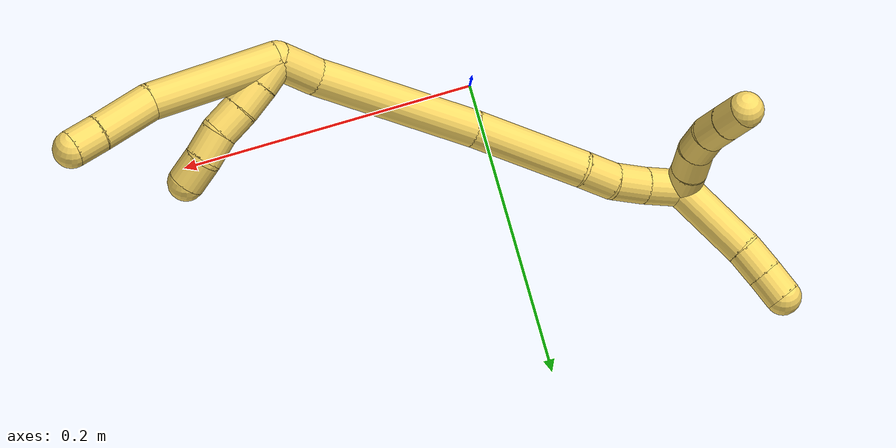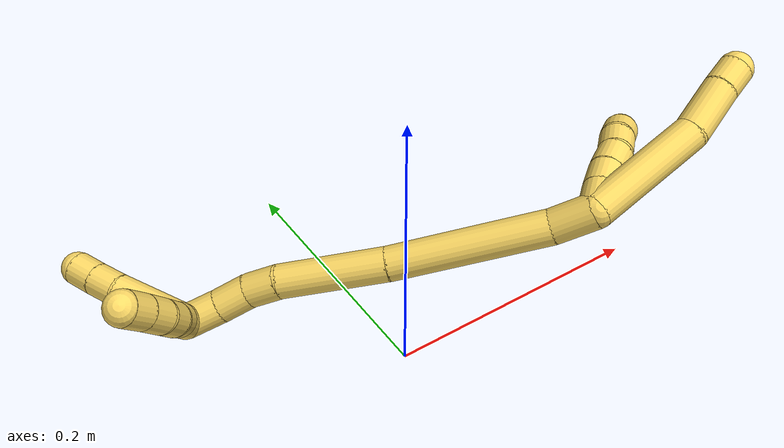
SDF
<sdf version="1.7">
 <world name="default">
  <model name="5">
   <static>0</static>
   <link name="5">
    <collision name="collision-cylinder-e_1_2_8">
     <pose>0.0444 0.002578 -0.001275 -2.03013 1.5061 -1.9713</pose>
     <geometry><cylinder><radius>0.0125</radius><length>0.088986</length></cylinder></geometry>
     <surface>
      <friction><ode><mu>1.16</mu><mu2>1.16</mu2><slip1>0</slip1><slip2>0</slip2></ode></friction>
      <contact><ode><kp>1e+06</kp><kd>1</kd><max_vel>0</max_vel><min_depth>0.001</min_depth></ode></contact>
     </surface>
    </collision>
    <visual name="visual-cylinder-e_1_2_8">
     <pose>0.0444 0.002578 -0.001275 -2.03013 1.5061 -1.9713</pose>
     <geometry><cylinder><radius>0.0125</radius><length>0.088986</length></cylinder></geometry>
     <material><ambient>1 0.858824 0.4 1</ambient></material>
    </visual>
    <collision name="collision-cylinder-e_2_8_9">
     <pose>0.108046 0.011362 -0.003516 -1.72514 1.2554 -1.40575</pose>
     <geometry><cylinder><radius>0.0125</radius><length>0.040489</length></cylinder></geometry>
     <surface>
      <friction><ode><mu>1.16</mu><mu2>1.16</mu2><slip1>0</slip1><slip2>0</slip2></ode></friction>
      <contact><ode><kp>1e+06</kp><kd>1</kd><max_vel>0</max_vel><min_depth>0.001</min_depth></ode></contact>
     </surface>
    </collision>
    <visual name="visual-cylinder-e_2_8_9">
     <pose>0.108046 0.011362 -0.003516 -1.72514 1.2554 -1.40575</pose>
     <geometry><cylinder><radius>0.0125</radius><length>0.040489</length></cylinder></geometry>
     <material><ambient>1 0.858824 0.4 1</ambient></material>
    </visual>
    <collision name="collision-cylinder-e_3_9_6">
     <pose>0.13717 0.020217 -0.005323 -1.87816 1.2964 -1.6052</pose>
     <geometry><cylinder><radius>0.0125</radius><length>0.020525</length></cylinder></geometry>
     <surface>
      <friction><ode><mu>1.16</mu><mu2>1.16</mu2><slip1>0</slip1><slip2>0</slip2></ode></friction>
      <contact><ode><kp>1e+06</kp><kd>1</kd><max_vel>0</max_vel><min_depth>0.001</min_depth></ode></contact>
     </surface>
    </collision>
    <visual name="visual-cylinder-e_3_9_6">
     <pose>0.13717 0.020217 -0.005323 -1.87816 1.2964 -1.6052</pose>
     <geometry><cylinder><radius>0.0125</radius><length>0.020525</length></cylinder></geometry>
     <material><ambient>1 0.858824 0.4 1</ambient></material>
    </visual>
    <collision name="collision-cylinder-e_1_2_10">
     <pose>0.007508 0.004605 -0.004736 -2.37012 0.84921 -1.67796</pose>
     <geometry><cylinder><radius>0.0125</radius><length>0.02</length></cylinder></geometry>
     <surface>
      <friction><ode><mu>1.16</mu><mu2>1.16</mu2><slip1>0</slip1><slip2>0</slip2></ode></friction>
      <contact><ode><kp>1e+06</kp><kd>1</kd><max_vel>0</max_vel><min_depth>0.001</min_depth></ode></contact>
     </surface>
    </collision>
    <visual name="visual-cylinder-e_1_2_10">
     <pose>0.007508 0.004605 -0.004736 -2.37012 0.84921 -1.67796</pose>
     <geometry><cylinder><radius>0.0125</radius><length>0.02</length></cylinder></geometry>
     <material><ambient>1 0.858824 0.4 1</ambient></material>
    </visual>
    <collision name="collision-cylinder-e_2_10_11">
     <pose>0.022915 0.013438 -0.013912 -2.38084 0.910806 -1.77219</pose>
     <geometry><cylinder><radius>0.0125</radius><length>0.02</length></cylinder></geometry>
     <surface>
      <friction><ode><mu>1.16</mu><mu2>1.16</mu2><slip1>0</slip1><slip2>0</slip2></ode></friction>
      <contact><ode><kp>1e+06</kp><kd>1</kd><max_vel>0</max_vel><min_depth>0.001</min_depth></ode></contact>
     </surface>
    </collision>
    <visual name="visual-cylinder-e_2_10_11">
     <pose>0.022915 0.013438 -0.013912 -2.38084 0.910806 -1.77219</pose>
     <geometry><cylinder><radius>0.0125</radius><length>0.02</length></cylinder></geometry>
     <material><ambient>1 0.858824 0.4 1</ambient></material>
    </visual>
    <collision name="collision-cylinder-e_3_11_12">
     <pose>0.03911 0.020979 -0.022849 -2.50644 0.978201 -2.03508</pose>
     <geometry><cylinder><radius>0.0125</radius><length>0.02</length></cylinder></geometry>
     <surface>
      <friction><ode><mu>1.16</mu><mu2>1.16</mu2><slip1>0</slip1><slip2>0</slip2></ode></friction>
      <contact><ode><kp>1e+06</kp><kd>1</kd><max_vel>0</max_vel><min_depth>0.001</min_depth></ode></contact>
     </surface>
    </collision>
    <visual name="visual-cylinder-e_3_11_12">
     <pose>0.03911 0.020979 -0.022849 -2.50644 0.978201 -2.03508</pose>
     <geometry><cylinder><radius>0.0125</radius><length>0.02</length></cylinder></geometry>
     <material><ambient>1 0.858824 0.4 1</ambient></material>
    </visual>
    <collision name="collision-cylinder-e_4_12_13">
     <pose>0.054167 0.028402 -0.033459 -2.54987 0.742573 -1.81317</pose>
     <geometry><cylinder><radius>0.0125</radius><length>0.02</length></cylinder></geometry>
     <surface>
      <friction><ode><mu>1.16</mu><mu2>1.16</mu2><slip1>0</slip1><slip2>0</slip2></ode></friction>
      <contact><ode><kp>1e+06</kp><kd>1</kd><max_vel>0</max_vel><min_depth>0.001</min_depth></ode></contact>
     </surface>
    </collision>
    <visual name="visual-cylinder-e_4_12_13">
     <pose>0.054167 0.028402 -0.033459 -2.54987 0.742573 -1.81317</pose>
     <geometry><cylinder><radius>0.0125</radius><length>0.02</length></cylinder></geometry>
     <material><ambient>1 0.858824 0.4 1</ambient></material>
    </visual>
    <collision name="collision-cylinder-e_5_13_5">
     <pose>0.067187 0.034525 -0.047109 -2.88052 0.676233 -2.42691</pose>
     <geometry><cylinder><radius>0.0125</radius><length>0.02</length></cylinder></geometry>
     <surface>
      <friction><ode><mu>1.16</mu><mu2>1.16</mu2><slip1>0</slip1><slip2>0</slip2></ode></friction>
      <contact><ode><kp>1e+06</kp><kd>1</kd><max_vel>0</max_vel><min_depth>0.001</min_depth></ode></contact>
     </surface>
    </collision>
    <visual name="visual-cylinder-e_5_13_5">
     <pose>0.067187 0.034525 -0.047109 -2.88052 0.676233 -2.42691</pose>
     <geometry><cylinder><radius>0.0125</radius><length>0.02</length></cylinder></geometry>
     <material><ambient>1 0.858824 0.4 1</ambient></material>
    </visual>
    <collision name="collision-cylinder-e_1_2_14">
     <pose>-0.012236 0.004116 -0.008571 -2.69385 -0.910205 2.27063</pose>
     <geometry><cylinder><radius>0.0125</radius><length>0.030991</length></cylinder></geometry>
     <surface>
      <friction><ode><mu>1.16</mu><mu2>1.16</mu2><slip1>0</slip1><slip2>0</slip2></ode></friction>
      <contact><ode><kp>1e+06</kp><kd>1</kd><max_vel>0</max_vel><min_depth>0.001</min_depth></ode></contact>
     </surface>
    </collision>
    <visual name="visual-cylinder-e_1_2_14">
     <pose>-0.012236 0.004116 -0.008571 -2.69385 -0.910205 2.27063</pose>
     <geometry><cylinder><radius>0.0125</radius><length>0.030991</length></cylinder></geometry>
     <material><ambient>1 0.858824 0.4 1</ambient></material>
    </visual>
    <collision name="collision-cylinder-e_2_14_15">
     <pose>-0.073006 0.030778 -0.036993 -2.29274 -1.01658 1.77861</pose>
     <geometry><cylinder><radius>0.0125</radius><length>0.114157</length></cylinder></geometry>
     <surface>
      <friction><ode><mu>1.16</mu><mu2>1.16</mu2><slip1>0</slip1><slip2>0</slip2></ode></friction>
      <contact><ode><kp>1e+06</kp><kd>1</kd><max_vel>0</max_vel><min_depth>0.001</min_depth></ode></contact>
     </surface>
    </collision>
    <visual name="visual-cylinder-e_2_14_15">
     <pose>-0.073006 0.030778 -0.036993 -2.29274 -1.01658 1.77861</pose>
     <geometry><cylinder><radius>0.0125</radius><length>0.114157</length></cylinder></geometry>
     <material><ambient>1 0.858824 0.4 1</ambient></material>
    </visual>
    <collision name="collision-cylinder-e_3_15_16">
     <pose>-0.154165 0.071114 -0.07016 -2.21331 -0.972828 1.62552</pose>
     <geometry><cylinder><radius>0.0125</radius><length>0.078948</length></cylinder></geometry>
     <surface>
      <friction><ode><mu>1.16</mu><mu2>1.16</mu2><slip1>0</slip1><slip2>0</slip2></ode></friction>
      <contact><ode><kp>1e+06</kp><kd>1</kd><max_vel>0</max_vel><min_depth>0.001</min_depth></ode></contact>
     </surface>
    </collision>
    <visual name="visual-cylinder-e_3_15_16">
     <pose>-0.154165 0.071114 -0.07016 -2.21331 -0.972828 1.62552</pose>
     <geometry><cylinder><radius>0.0125</radius><length>0.078948</length></cylinder></geometry>
     <material><ambient>1 0.858824 0.4 1</ambient></material>
    </visual>
    <collision name="collision-cylinder-e_4_16_17">
     <pose>-0.196634 0.092929 -0.089109 -2.52137 -0.957918 2.0358</pose>
     <geometry><cylinder><radius>0.0125</radius><length>0.024069</length></cylinder></geometry>
     <surface>
      <friction><ode><mu>1.16</mu><mu2>1.16</mu2><slip1>0</slip1><slip2>0</slip2></ode></friction>
      <contact><ode><kp>1e+06</kp><kd>1</kd><max_vel>0</max_vel><min_depth>0.001</min_depth></ode></contact>
     </surface>
    </collision>
    <visual name="visual-cylinder-e_4_16_17">
     <pose>-0.196634 0.092929 -0.089109 -2.52137 -0.957918 2.0358</pose>
     <geometry><cylinder><radius>0.0125</radius><length>0.024069</length></cylinder></geometry>
     <material><ambient>1 0.858824 0.4 1</ambient></material>
    </visual>
    <collision name="collision-cylinder-e_5_17_18">
     <pose>-0.217639 0.098895 -0.099414 -2.74744 -1.14519 2.54086</pose>
     <geometry><cylinder><radius>0.0125</radius><length>0.024507</length></cylinder></geometry>
     <surface>
      <friction><ode><mu>1.16</mu><mu2>1.16</mu2><slip1>0</slip1><slip2>0</slip2></ode></friction>
      <contact><ode><kp>1e+06</kp><kd>1</kd><max_vel>0</max_vel><min_depth>0.001</min_depth></ode></contact>
     </surface>
    </collision>
    <visual name="visual-cylinder-e_5_17_18">
     <pose>-0.217639 0.098895 -0.099414 -2.74744 -1.14519 2.54086</pose>
     <geometry><cylinder><radius>0.0125</radius><length>0.024507</length></cylinder></geometry>
     <material><ambient>1 0.858824 0.4 1</ambient></material>
    </visual>
    <collision name="collision-cylinder-e_6_18_1">
     <pose>-0.241729 0.10341 -0.107677 -2.52016 -1.24151 2.29741</pose>
     <geometry><cylinder><radius>0.0125</radius><length>0.027327</length></cylinder></geometry>
     <surface>
      <friction><ode><mu>1.16</mu><mu2>1.16</mu2><slip1>0</slip1><slip2>0</slip2></ode></friction>
      <contact><ode><kp>1e+06</kp><kd>1</kd><max_vel>0</max_vel><min_depth>0.001</min_depth></ode></contact>
     </surface>
    </collision>
    <visual name="visual-cylinder-e_6_18_1">
     <pose>-0.241729 0.10341 -0.107677 -2.52016 -1.24151 2.29741</pose>
     <geometry><cylinder><radius>0.0125</radius><length>0.027327</length></cylinder></geometry>
     <material><ambient>1 0.858824 0.4 1</ambient></material>
    </visual>
    <collision name="collision-cylinder-e_1_1_19">
     <pose>-0.256252 0.106552 -0.101414 -0.057731 -0.160113 0.004633</pose>
     <geometry><cylinder><radius>0.0125</radius><length>0.02</length></cylinder></geometry>
     <surface>
      <friction><ode><mu>1.16</mu><mu2>1.16</mu2><slip1>0</slip1><slip2>0</slip2></ode></friction>
      <contact><ode><kp>1e+06</kp><kd>1</kd><max_vel>0</max_vel><min_depth>0.001</min_depth></ode></contact>
     </surface>
    </collision>
    <visual name="visual-cylinder-e_1_1_19">
     <pose>-0.256252 0.106552 -0.101414 -0.057731 -0.160113 0.004633</pose>
     <geometry><cylinder><radius>0.0125</radius><length>0.02</length></cylinder></geometry>
     <material><ambient>1 0.858824 0.4 1</ambient></material>
    </visual>
    <collision name="collision-cylinder-e_2_19_20">
     <pose>-0.259153 0.106741 -0.081651 0.038394 -0.130989 -0.002519</pose>
     <geometry><cylinder><radius>0.0125</radius><length>0.02</length></cylinder></geometry>
     <surface>
      <friction><ode><mu>1.16</mu><mu2>1.16</mu2><slip1>0</slip1><slip2>0</slip2></ode></friction>
      <contact><ode><kp>1e+06</kp><kd>1</kd><max_vel>0</max_vel><min_depth>0.001</min_depth></ode></contact>
     </surface>
    </collision>
    <visual name="visual-cylinder-e_2_19_20">
     <pose>-0.259153 0.106741 -0.081651 0.038394 -0.130989 -0.002519</pose>
     <geometry><cylinder><radius>0.0125</radius><length>0.02</length></cylinder></geometry>
     <material><ambient>1 0.858824 0.4 1</ambient></material>
    </visual>
    <collision name="collision-cylinder-e_3_20_21">
     <pose>-0.26305 0.10796 -0.062219 -0.166363 -0.262086 0.021976</pose>
     <geometry><cylinder><radius>0.0125</radius><length>0.02</length></cylinder></geometry>
     <surface>
      <friction><ode><mu>1.16</mu><mu2>1.16</mu2><slip1>0</slip1><slip2>0</slip2></ode></friction>
      <contact><ode><kp>1e+06</kp><kd>1</kd><max_vel>0</max_vel><min_depth>0.001</min_depth></ode></contact>
     </surface>
    </collision>
    <visual name="visual-cylinder-e_3_20_21">
     <pose>-0.26305 0.10796 -0.062219 -0.166363 -0.262086 0.021976</pose>
     <geometry><cylinder><radius>0.0125</radius><length>0.02</length></cylinder></geometry>
     <material><ambient>1 0.858824 0.4 1</ambient></material>
    </visual>
    <collision name="collision-cylinder-e_4_21_22">
     <pose>-0.26959 0.112701 -0.044061 -0.349014 -0.405985 0.072543</pose>
     <geometry><cylinder><radius>0.0125</radius><length>0.02</length></cylinder></geometry>
     <surface>
      <friction><ode><mu>1.16</mu><mu2>1.16</mu2><slip1>0</slip1><slip2>0</slip2></ode></friction>
      <contact><ode><kp>1e+06</kp><kd>1</kd><max_vel>0</max_vel><min_depth>0.001</min_depth></ode></contact>
     </surface>
    </collision>
    <visual name="visual-cylinder-e_4_21_22">
     <pose>-0.26959 0.112701 -0.044061 -0.349014 -0.405985 0.072543</pose>
     <geometry><cylinder><radius>0.0125</radius><length>0.02</length></cylinder></geometry>
     <material><ambient>1 0.858824 0.4 1</ambient></material>
    </visual>
    <collision name="collision-cylinder-e_5_22_4">
     <pose>-0.2778 0.118928 -0.026923 -0.34803 -0.440122 0.078604</pose>
     <geometry><cylinder><radius>0.0125</radius><length>0.02</length></cylinder></geometry>
     <surface>
      <friction><ode><mu>1.16</mu><mu2>1.16</mu2><slip1>0</slip1><slip2>0</slip2></ode></friction>
      <contact><ode><kp>1e+06</kp><kd>1</kd><max_vel>0</max_vel><min_depth>0.001</min_depth></ode></contact>
     </surface>
    </collision>
    <visual name="visual-cylinder-e_5_22_4">
     <pose>-0.2778 0.118928 -0.026923 -0.34803 -0.440122 0.078604</pose>
     <geometry><cylinder><radius>0.0125</radius><length>0.02</length></cylinder></geometry>
     <material><ambient>1 0.858824 0.4 1</ambient></material>
    </visual>
    <collision name="collision-cylinder-e_1_1_23">
     <pose>-0.268071 0.130483 -0.1196 -1.89854 -0.478178 0.656075</pose>
     <geometry><cylinder><radius>0.0125</radius><length>0.058295</length></cylinder></geometry>
     <surface>
      <friction><ode><mu>1.16</mu><mu2>1.16</mu2><slip1>0</slip1><slip2>0</slip2></ode></friction>
      <contact><ode><kp>1e+06</kp><kd>1</kd><max_vel>0</max_vel><min_depth>0.001</min_depth></ode></contact>
     </surface>
    </collision>
    <visual name="visual-cylinder-e_1_1_23">
     <pose>-0.268071 0.130483 -0.1196 -1.89854 -0.478178 0.656075</pose>
     <geometry><cylinder><radius>0.0125</radius><length>0.058295</length></cylinder></geometry>
     <material><ambient>1 0.858824 0.4 1</ambient></material>
    </visual>
    <collision name="collision-cylinder-e_2_23_24">
     <pose>-0.285786 0.163834 -0.13232 -2.03122 -0.410805 0.648102</pose>
     <geometry><cylinder><radius>0.0125</radius><length>0.02155</length></cylinder></geometry>
     <surface>
      <friction><ode><mu>1.16</mu><mu2>1.16</mu2><slip1>0</slip1><slip2>0</slip2></ode></friction>
      <contact><ode><kp>1e+06</kp><kd>1</kd><max_vel>0</max_vel><min_depth>0.001</min_depth></ode></contact>
     </surface>
    </collision>
    <visual name="visual-cylinder-e_2_23_24">
     <pose>-0.285786 0.163834 -0.13232 -2.03122 -0.410805 0.648102</pose>
     <geometry><cylinder><radius>0.0125</radius><length>0.02155</length></cylinder></geometry>
     <material><ambient>1 0.858824 0.4 1</ambient></material>
    </visual>
    <collision name="collision-cylinder-e_3_24_3">
     <pose>-0.293819 0.181123 -0.140762 -2.01851 -0.379113 0.592029</pose>
     <geometry><cylinder><radius>0.0125</radius><length>0.020155</length></cylinder></geometry>
     <surface>
      <friction><ode><mu>1.16</mu><mu2>1.16</mu2><slip1>0</slip1><slip2>0</slip2></ode></friction>
      <contact><ode><kp>1e+06</kp><kd>1</kd><max_vel>0</max_vel><min_depth>0.001</min_depth></ode></contact>
     </surface>
    </collision>
    <visual name="visual-cylinder-e_3_24_3">
     <pose>-0.293819 0.181123 -0.140762 -2.01851 -0.379113 0.592029</pose>
     <geometry><cylinder><radius>0.0125</radius><length>0.020155</length></cylinder></geometry>
     <material><ambient>1 0.858824 0.4 1</ambient></material>
    </visual>
    <collision name="collision-sphere-3">
     <pose>-0.297548 0.189562 -0.144815 0 -0 0</pose>
     <geometry><sphere><radius>0.0125</radius></sphere></geometry>
     <surface>
      <friction><ode><mu>1.16</mu><mu2>1.16</mu2><slip1>0</slip1><slip2>0</slip2></ode></friction>
      <contact><ode><kp>1e+06</kp><kd>1</kd><max_vel>0</max_vel><min_depth>0.001</min_depth></ode></contact>
     </surface>
    </collision>
    <visual name="visual-sphere-3">
     <pose>-0.297548 0.189562 -0.144815 0 -0 0</pose>
     <geometry><sphere><radius>0.0125</radius></sphere></geometry>
     <material><ambient>1 0.858824 0.4 1</ambient></material>
    </visual>
    <collision name="collision-sphere-24">
     <pose>-0.290089 0.172683 -0.136709 0 -0 0</pose>
     <geometry><sphere><radius>0.0125</radius></sphere></geometry>
     <surface>
      <friction><ode><mu>1.16</mu><mu2>1.16</mu2><slip1>0</slip1><slip2>0</slip2></ode></friction>
      <contact><ode><kp>1e+06</kp><kd>1</kd><max_vel>0</max_vel><min_depth>0.001</min_depth></ode></contact>
     </surface>
    </collision>
    <visual name="visual-sphere-24">
     <pose>-0.290089 0.172683 -0.136709 0 -0 0</pose>
     <geometry><sphere><radius>0.0125</radius></sphere></geometry>
     <material><ambient>1 0.858824 0.4 1</ambient></material>
    </visual>
    <collision name="collision-sphere-23">
     <pose>-0.281483 0.154984 -0.12793 0 -0 0</pose>
     <geometry><sphere><radius>0.0125</radius></sphere></geometry>
     <surface>
      <friction><ode><mu>1.16</mu><mu2>1.16</mu2><slip1>0</slip1><slip2>0</slip2></ode></friction>
      <contact><ode><kp>1e+06</kp><kd>1</kd><max_vel>0</max_vel><min_depth>0.001</min_depth></ode></contact>
     </surface>
    </collision>
    <visual name="visual-sphere-23">
     <pose>-0.281483 0.154984 -0.12793 0 -0 0</pose>
     <geometry><sphere><radius>0.0125</radius></sphere></geometry>
     <material><ambient>1 0.858824 0.4 1</ambient></material>
    </visual>
    <collision name="collision-sphere-4">
     <pose>-0.28206 0.122014 -0.018418 0 -0 0</pose>
     <geometry><sphere><radius>0.0125</radius></sphere></geometry>
     <surface>
      <friction><ode><mu>1.16</mu><mu2>1.16</mu2><slip1>0</slip1><slip2>0</slip2></ode></friction>
      <contact><ode><kp>1e+06</kp><kd>1</kd><max_vel>0</max_vel><min_depth>0.001</min_depth></ode></contact>
     </surface>
    </collision>
    <visual name="visual-sphere-4">
     <pose>-0.28206 0.122014 -0.018418 0 -0 0</pose>
     <geometry><sphere><radius>0.0125</radius></sphere></geometry>
     <material><ambient>1 0.858824 0.4 1</ambient></material>
    </visual>
    <collision name="collision-sphere-22">
     <pose>-0.273539 0.115843 -0.035427 0 -0 0</pose>
     <geometry><sphere><radius>0.0125</radius></sphere></geometry>
     <surface>
      <friction><ode><mu>1.16</mu><mu2>1.16</mu2><slip1>0</slip1><slip2>0</slip2></ode></friction>
      <contact><ode><kp>1e+06</kp><kd>1</kd><max_vel>0</max_vel><min_depth>0.001</min_depth></ode></contact>
     </surface>
    </collision>
    <visual name="visual-sphere-22">
     <pose>-0.273539 0.115843 -0.035427 0 -0 0</pose>
     <geometry><sphere><radius>0.0125</radius></sphere></geometry>
     <material><ambient>1 0.858824 0.4 1</ambient></material>
    </visual>
    <collision name="collision-sphere-21">
     <pose>-0.265641 0.10956 -0.052694 0 -0 0</pose>
     <geometry><sphere><radius>0.0125</radius></sphere></geometry>
     <surface>
      <friction><ode><mu>1.16</mu><mu2>1.16</mu2><slip1>0</slip1><slip2>0</slip2></ode></friction>
      <contact><ode><kp>1e+06</kp><kd>1</kd><max_vel>0</max_vel><min_depth>0.001</min_depth></ode></contact>
     </surface>
    </collision>
    <visual name="visual-sphere-21">
     <pose>-0.265641 0.10956 -0.052694 0 -0 0</pose>
     <geometry><sphere><radius>0.0125</radius></sphere></geometry>
     <material><ambient>1 0.858824 0.4 1</ambient></material>
    </visual>
    <collision name="collision-sphere-20">
     <pose>-0.260459 0.106361 -0.071744 0 -0 0</pose>
     <geometry><sphere><radius>0.0125</radius></sphere></geometry>
     <surface>
      <friction><ode><mu>1.16</mu><mu2>1.16</mu2><slip1>0</slip1><slip2>0</slip2></ode></friction>
      <contact><ode><kp>1e+06</kp><kd>1</kd><max_vel>0</max_vel><min_depth>0.001</min_depth></ode></contact>
     </surface>
    </collision>
    <visual name="visual-sphere-20">
     <pose>-0.260459 0.106361 -0.071744 0 -0 0</pose>
     <geometry><sphere><radius>0.0125</radius></sphere></geometry>
     <material><ambient>1 0.858824 0.4 1</ambient></material>
    </visual>
    <collision name="collision-sphere-11">
     <pose>0.030815 0.017665 -0.018353 0 -0 0</pose>
     <geometry><sphere><radius>0.0125</radius></sphere></geometry>
     <surface>
      <friction><ode><mu>1.16</mu><mu2>1.16</mu2><slip1>0</slip1><slip2>0</slip2></ode></friction>
      <contact><ode><kp>1e+06</kp><kd>1</kd><max_vel>0</max_vel><min_depth>0.001</min_depth></ode></contact>
     </surface>
    </collision>
    <visual name="visual-sphere-11">
     <pose>0.030815 0.017665 -0.018353 0 -0 0</pose>
     <geometry><sphere><radius>0.0125</radius></sphere></geometry>
     <material><ambient>1 0.858824 0.4 1</ambient></material>
    </visual>
    <collision name="collision-sphere-10">
     <pose>0.015015 0.009211 -0.009471 0 -0 0</pose>
     <geometry><sphere><radius>0.0125</radius></sphere></geometry>
     <surface>
      <friction><ode><mu>1.16</mu><mu2>1.16</mu2><slip1>0</slip1><slip2>0</slip2></ode></friction>
      <contact><ode><kp>1e+06</kp><kd>1</kd><max_vel>0</max_vel><min_depth>0.001</min_depth></ode></contact>
     </surface>
    </collision>
    <visual name="visual-sphere-10">
     <pose>0.015015 0.009211 -0.009471 0 -0 0</pose>
     <geometry><sphere><radius>0.0125</radius></sphere></geometry>
     <material><ambient>1 0.858824 0.4 1</ambient></material>
    </visual>
    <collision name="collision-sphere-6">
     <pose>0.147049 0.022867 -0.006164 0 -0 0</pose>
     <geometry><sphere><radius>0.0125</radius></sphere></geometry>
     <surface>
      <friction><ode><mu>1.16</mu><mu2>1.16</mu2><slip1>0</slip1><slip2>0</slip2></ode></friction>
      <contact><ode><kp>1e+06</kp><kd>1</kd><max_vel>0</max_vel><min_depth>0.001</min_depth></ode></contact>
     </surface>
    </collision>
    <visual name="visual-sphere-6">
     <pose>0.147049 0.022867 -0.006164 0 -0 0</pose>
     <geometry><sphere><radius>0.0125</radius></sphere></geometry>
     <material><ambient>1 0.858824 0.4 1</ambient></material>
    </visual>
    <collision name="collision-sphere-9">
     <pose>0.127292 0.017567 -0.004481 0 -0 0</pose>
     <geometry><sphere><radius>0.0125</radius></sphere></geometry>
     <surface>
      <friction><ode><mu>1.16</mu><mu2>1.16</mu2><slip1>0</slip1><slip2>0</slip2></ode></friction>
      <contact><ode><kp>1e+06</kp><kd>1</kd><max_vel>0</max_vel><min_depth>0.001</min_depth></ode></contact>
     </surface>
    </collision>
    <visual name="visual-sphere-9">
     <pose>0.127292 0.017567 -0.004481 0 -0 0</pose>
     <geometry><sphere><radius>0.0125</radius></sphere></geometry>
     <material><ambient>1 0.858824 0.4 1</ambient></material>
    </visual>
    <collision name="collision-sphere-2">
     <geometry><sphere><radius>0.0125</radius></sphere></geometry>
     <surface>
      <friction><ode><mu>1.16</mu><mu2>1.16</mu2><slip1>0</slip1><slip2>0</slip2></ode></friction>
      <contact><ode><kp>1e+06</kp><kd>1</kd><max_vel>0</max_vel><min_depth>0.001</min_depth></ode></contact>
     </surface>
    </collision>
    <visual name="visual-sphere-2">
     <geometry><sphere><radius>0.0125</radius></sphere></geometry>
     <material><ambient>1 0.858824 0.4 1</ambient></material>
    </visual>
    <collision name="collision-sphere-19">
     <pose>-0.257847 0.107122 -0.091558 0 -0 0</pose>
     <geometry><sphere><radius>0.0125</radius></sphere></geometry>
     <surface>
      <friction><ode><mu>1.16</mu><mu2>1.16</mu2><slip1>0</slip1><slip2>0</slip2></ode></friction>
      <contact><ode><kp>1e+06</kp><kd>1</kd><max_vel>0</max_vel><min_depth>0.001</min_depth></ode></contact>
     </surface>
    </collision>
    <visual name="visual-sphere-19">
     <pose>-0.257847 0.107122 -0.091558 0 -0 0</pose>
     <geometry><sphere><radius>0.0125</radius></sphere></geometry>
     <material><ambient>1 0.858824 0.4 1</ambient></material>
    </visual>
    <collision name="collision-sphere-8">
     <pose>0.0888 0.005156 -0.00255 0 -0 0</pose>
     <geometry><sphere><radius>0.0125</radius></sphere></geometry>
     <surface>
      <friction><ode><mu>1.16</mu><mu2>1.16</mu2><slip1>0</slip1><slip2>0</slip2></ode></friction>
      <contact><ode><kp>1e+06</kp><kd>1</kd><max_vel>0</max_vel><min_depth>0.001</min_depth></ode></contact>
     </surface>
    </collision>
    <visual name="visual-sphere-8">
     <pose>0.0888 0.005156 -0.00255 0 -0 0</pose>
     <geometry><sphere><radius>0.0125</radius></sphere></geometry>
     <material><ambient>1 0.858824 0.4 1</ambient></material>
    </visual>
    <collision name="collision-sphere-12">
     <pose>0.047405 0.024293 -0.027345 0 -0 0</pose>
     <geometry><sphere><radius>0.0125</radius></sphere></geometry>
     <surface>
      <friction><ode><mu>1.16</mu><mu2>1.16</mu2><slip1>0</slip1><slip2>0</slip2></ode></friction>
      <contact><ode><kp>1e+06</kp><kd>1</kd><max_vel>0</max_vel><min_depth>0.001</min_depth></ode></contact>
     </surface>
    </collision>
    <visual name="visual-sphere-12">
     <pose>0.047405 0.024293 -0.027345 0 -0 0</pose>
     <geometry><sphere><radius>0.0125</radius></sphere></geometry>
     <material><ambient>1 0.858824 0.4 1</ambient></material>
    </visual>
    <collision name="collision-sphere-13">
     <pose>0.060929 0.032512 -0.039574 0 -0 0</pose>
     <geometry><sphere><radius>0.0125</radius></sphere></geometry>
     <surface>
      <friction><ode><mu>1.16</mu><mu2>1.16</mu2><slip1>0</slip1><slip2>0</slip2></ode></friction>
      <contact><ode><kp>1e+06</kp><kd>1</kd><max_vel>0</max_vel><min_depth>0.001</min_depth></ode></contact>
     </surface>
    </collision>
    <visual name="visual-sphere-13">
     <pose>0.060929 0.032512 -0.039574 0 -0 0</pose>
     <geometry><sphere><radius>0.0125</radius></sphere></geometry>
     <material><ambient>1 0.858824 0.4 1</ambient></material>
    </visual>
    <collision name="collision-sphere-5">
     <pose>0.073446 0.036538 -0.054644 0 -0 0</pose>
     <geometry><sphere><radius>0.0125</radius></sphere></geometry>
     <surface>
      <friction><ode><mu>1.16</mu><mu2>1.16</mu2><slip1>0</slip1><slip2>0</slip2></ode></friction>
      <contact><ode><kp>1e+06</kp><kd>1</kd><max_vel>0</max_vel><min_depth>0.001</min_depth></ode></contact>
     </surface>
    </collision>
    <visual name="visual-sphere-5">
     <pose>0.073446 0.036538 -0.054644 0 -0 0</pose>
     <geometry><sphere><radius>0.0125</radius></sphere></geometry>
     <material><ambient>1 0.858824 0.4 1</ambient></material>
    </visual>
    <collision name="collision-sphere-14">
     <pose>-0.024472 0.008233 -0.017141 0 -0 0</pose>
     <geometry><sphere><radius>0.0125</radius></sphere></geometry>
     <surface>
      <friction><ode><mu>1.16</mu><mu2>1.16</mu2><slip1>0</slip1><slip2>0</slip2></ode></friction>
      <contact><ode><kp>1e+06</kp><kd>1</kd><max_vel>0</max_vel><min_depth>0.001</min_depth></ode></contact>
     </surface>
    </collision>
    <visual name="visual-sphere-14">
     <pose>-0.024472 0.008233 -0.017141 0 -0 0</pose>
     <geometry><sphere><radius>0.0125</radius></sphere></geometry>
     <material><ambient>1 0.858824 0.4 1</ambient></material>
    </visual>
    <collision name="collision-sphere-15">
     <pose>-0.12154 0.053323 -0.056844 0 -0 0</pose>
     <geometry><sphere><radius>0.0125</radius></sphere></geometry>
     <surface>
      <friction><ode><mu>1.16</mu><mu2>1.16</mu2><slip1>0</slip1><slip2>0</slip2></ode></friction>
      <contact><ode><kp>1e+06</kp><kd>1</kd><max_vel>0</max_vel><min_depth>0.001</min_depth></ode></contact>
     </surface>
    </collision>
    <visual name="visual-sphere-15">
     <pose>-0.12154 0.053323 -0.056844 0 -0 0</pose>
     <geometry><sphere><radius>0.0125</radius></sphere></geometry>
     <material><ambient>1 0.858824 0.4 1</ambient></material>
    </visual>
    <collision name="collision-sphere-16">
     <pose>-0.18679 0.088905 -0.083476 0 -0 0</pose>
     <geometry><sphere><radius>0.0125</radius></sphere></geometry>
     <surface>
      <friction><ode><mu>1.16</mu><mu2>1.16</mu2><slip1>0</slip1><slip2>0</slip2></ode></friction>
      <contact><ode><kp>1e+06</kp><kd>1</kd><max_vel>0</max_vel><min_depth>0.001</min_depth></ode></contact>
     </surface>
    </collision>
    <visual name="visual-sphere-16">
     <pose>-0.18679 0.088905 -0.083476 0 -0 0</pose>
     <geometry><sphere><radius>0.0125</radius></sphere></geometry>
     <material><ambient>1 0.858824 0.4 1</ambient></material>
    </visual>
    <collision name="collision-sphere-17">
     <pose>-0.206478 0.096952 -0.094743 0 -0 0</pose>
     <geometry><sphere><radius>0.0125</radius></sphere></geometry>
     <surface>
      <friction><ode><mu>1.16</mu><mu2>1.16</mu2><slip1>0</slip1><slip2>0</slip2></ode></friction>
      <contact><ode><kp>1e+06</kp><kd>1</kd><max_vel>0</max_vel><min_depth>0.001</min_depth></ode></contact>
     </surface>
    </collision>
    <visual name="visual-sphere-17">
     <pose>-0.206478 0.096952 -0.094743 0 -0 0</pose>
     <geometry><sphere><radius>0.0125</radius></sphere></geometry>
     <material><ambient>1 0.858824 0.4 1</ambient></material>
    </visual>
    <collision name="collision-sphere-18">
     <pose>-0.228799 0.100838 -0.104085 0 -0 0</pose>
     <geometry><sphere><radius>0.0125</radius></sphere></geometry>
     <surface>
      <friction><ode><mu>1.16</mu><mu2>1.16</mu2><slip1>0</slip1><slip2>0</slip2></ode></friction>
      <contact><ode><kp>1e+06</kp><kd>1</kd><max_vel>0</max_vel><min_depth>0.001</min_depth></ode></contact>
     </surface>
    </collision>
    <visual name="visual-sphere-18">
     <pose>-0.228799 0.100838 -0.104085 0 -0 0</pose>
     <geometry><sphere><radius>0.0125</radius></sphere></geometry>
     <material><ambient>1 0.858824 0.4 1</ambient></material>
    </visual>
    <collision name="collision-sphere-1">
     <pose>-0.254658 0.105983 -0.11127 0 -0 0</pose>
     <geometry><sphere><radius>0.0125</radius></sphere></geometry>
     <surface>
      <friction><ode><mu>1.16</mu><mu2>1.16</mu2><slip1>0</slip1><slip2>0</slip2></ode></friction>
      <contact><ode><kp>1e+06</kp><kd>1</kd><max_vel>0</max_vel><min_depth>0.001</min_depth></ode></contact>
     </surface>
    </collision>
    <visual name="visual-sphere-1">
     <pose>-0.254658 0.105983 -0.11127 0 -0 0</pose>
     <geometry><sphere><radius>0.0125</radius></sphere></geometry>
     <material><ambient>1 0.858824 0.4 1</ambient></material>
    </visual>
    <inertial>
     <pose>-0.10243 0.060974 -0.052458 0 -0 0</pose>
     <mass>0.75</mass>
     <inertia>
      <ixx>8.9e-05</ixx>
      <ixy>0</ixy>
      <ixz>0</ixz>
      <iyy>0.000337</iyy>
      <iyz>0</iyz>
      <izz>-1.9e-05</izz>
     </inertia>
    </inertial>
   </link>
   <pose>0.11713 -0.047694 0.113189 0.589486 -0.275953 -0.012966</pose>
  </model>
 </world>
</sdf>
